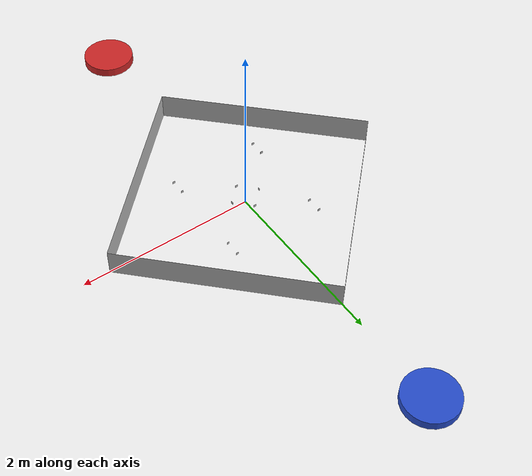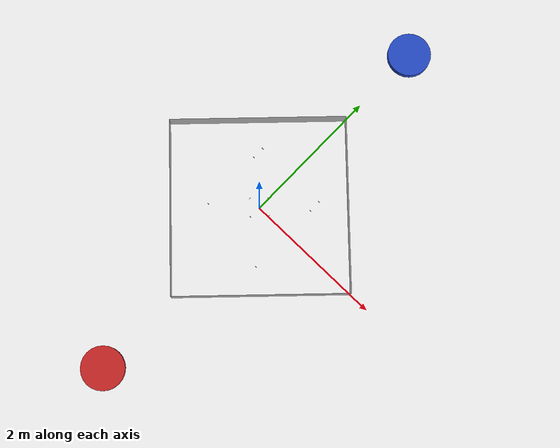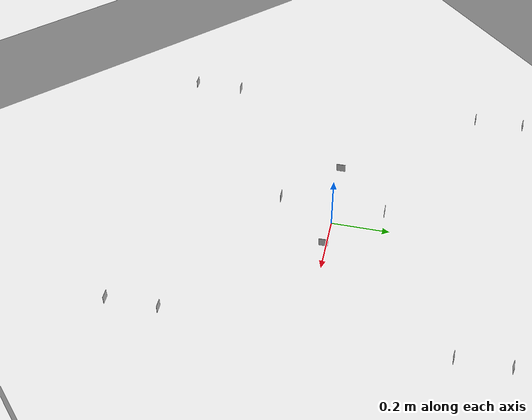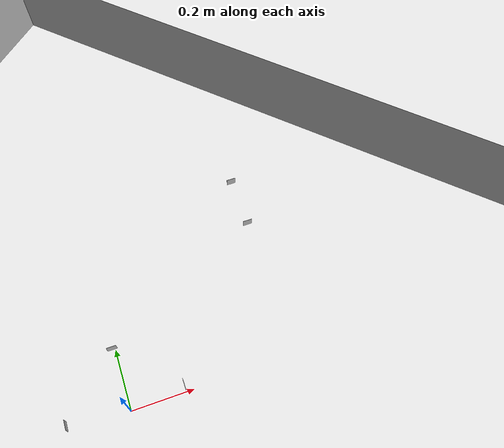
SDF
<sdf version="1.4">
 <world name="onigiri_field">
  <scene><shadows>false</shadows></scene>
  <physics name="ode_100iters" type="ode">
   <real_time_update_rate>1000</real_time_update_rate>
   <max_step_size>0.01</max_step_size>
   <real_time_factor>10</real_time_factor>
  </physics>
  <include><uri>model://sun</uri></include>
  <model name="box_0_tag_1">
   <static>true</static>
   <pose>0 0.176 0.1 0 0 0</pose>
   <link name="link">
    <visual name="visual">
     <geometry><box><size>0.03 0.001 0.03</size></box></geometry>
     <material><script><uri>model://tags</uri><name>0001</name></script></material>
    </visual>
   </link>
  </model>
  <model name="box_0_tag_2">
   <static>true</static>
   <pose>0 -0.176 0.1 0 0 0</pose>
   <link name="link">
    <visual name="visual">
     <geometry><box><size>0.03 0.001 0.03</size></box></geometry>
     <material><script><uri>model://tags</uri><name>0002</name></script></material>
    </visual>
   </link>
  </model>
  <model name="box_0_tag_3">
   <static>true</static>
   <pose>0.176 0 0.1 0 0 1.571</pose>
   <link name="link">
    <visual name="visual">
     <geometry><box><size>0.03 0.001 0.03</size></box></geometry>
     <material><script><uri>model://tags</uri><name>0003</name></script></material>
    </visual>
   </link>
  </model>
  <model name="box_0_tag_4">
   <static>true</static>
   <pose>-0.176 0 0.1 0 0 1.571</pose>
   <link name="link">
    <visual name="visual">
     <geometry><box><size>0.03 0.001 0.03</size></box></geometry>
     <material><script><uri>model://tags</uri><name>0004</name></script></material>
    </visual>
   </link>
  </model>
  <model name="box_1_tag_5">
   <static>true</static>
   <pose>0.53 0.615 0.1 0 0 0</pose>
   <link name="link">
    <visual name="visual">
     <geometry><box><size>0.03 0.001 0.03</size></box></geometry>
     <material><script><uri>model://tags</uri><name>0005</name></script></material>
    </visual>
   </link>
  </model>
  <model name="box_1_tag_6">
   <static>true</static>
   <pose>0.53 0.445 0.1 0 0 0</pose>
   <link name="link">
    <visual name="visual">
     <geometry><box><size>0.03 0.001 0.03</size></box></geometry>
     <material><script><uri>model://tags</uri><name>0006</name></script></material>
    </visual>
   </link>
  </model>
  <model name="box_2_tag_7">
   <static>true</static>
   <pose>0.53 -0.445 0.1 0 0 0</pose>
   <link name="link">
    <visual name="visual">
     <geometry><box><size>0.03 0.001 0.03</size></box></geometry>
     <material><script><uri>model://tags</uri><name>0007</name></script></material>
    </visual>
   </link>
  </model>
  <model name="box_2_tag_8">
   <static>true</static>
   <pose>0.53 -0.615 0.1 0 0 0</pose>
   <link name="link">
    <visual name="visual">
     <geometry><box><size>0.03 0.001 0.03</size></box></geometry>
     <material><script><uri>model://tags</uri><name>0008</name></script></material>
    </visual>
   </link>
  </model>
  <model name="box_3_tag_9">
   <static>true</static>
   <pose>-0.53 0.615 0.1 0 0 0</pose>
   <link name="link">
    <visual name="visual">
     <geometry><box><size>0.03 0.001 0.03</size></box></geometry>
     <material><script><uri>model://tags</uri><name>0009</name></script></material>
    </visual>
   </link>
  </model>
  <model name="box_3_tag_10">
   <static>true</static>
   <pose>-0.53 0.445 0.1 0 0 0</pose>
   <link name="link">
    <visual name="visual">
     <geometry><box><size>0.03 0.001 0.03</size></box></geometry>
     <material><script><uri>model://tags</uri><name>0010</name></script></material>
    </visual>
   </link>
  </model>
  <model name="box_4_tag_11">
   <static>true</static>
   <pose>-0.53 -0.445 0.1 0 0 0</pose>
   <link name="link">
    <visual name="visual">
     <geometry><box><size>0.03 0.001 0.03</size></box></geometry>
     <material><script><uri>model://tags</uri><name>0011</name></script></material>
    </visual>
   </link>
  </model>
  <model name="box_4_tag_12">
   <static>true</static>
   <pose>-0.53 -0.615 0.1 0 0 0</pose>
   <link name="link">
    <visual name="visual">
     <geometry><box><size>0.03 0.001 0.03</size></box></geometry>
     <material><script><uri>model://tags</uri><name>0012</name></script></material>
    </visual>
   </link>
  </model>
  <model name="wall_1">
   <static>true</static>
   <pose>0.8485 0.8485 0.15 0 0 -0.785398163397</pose>
   <link name="link">
    <collision name="visual"><geometry><box><size>2.39992041535 0.0001 0.3</size></box></geometry></collision>
    <visual name="visual">
     <geometry><box><size>2.39992041535 0.0001 0.3</size></box></geometry>
     <material><script><uri>model://wall</uri><name>wall_1</name></script></material>
    </visual>
   </link>
  </model>
  <model name="wall_2">
   <static>true</static>
   <pose>0.8485 -0.8485 0.15 0 0 -2.35619449019</pose>
   <link name="link">
    <collision name="visual"><geometry><box><size>2.39992041535 0.0001 0.3</size></box></geometry></collision>
    <visual name="visual">
     <geometry><box><size>2.39992041535 0.0001 0.3</size></box></geometry>
     <material><script><uri>model://wall</uri><name>wall_2</name></script></material>
    </visual>
   </link>
  </model>
  <model name="wall_3">
   <static>true</static>
   <pose>-0.8485 -0.8485 0.15 0 0 2.35619449019</pose>
   <link name="link">
    <collision name="visual"><geometry><box><size>2.39992041535 0.0001 0.3</size></box></geometry></collision>
    <visual name="visual">
     <geometry><box><size>2.39992041535 0.0001 0.3</size></box></geometry>
     <material><script><uri>model://wall</uri><name>wall_3</name></script></material>
    </visual>
   </link>
  </model>
  <model name="wall_4">
   <static>true</static>
   <pose>-0.8485 0.8485 0.15 0 0 0.785398163397</pose>
   <link name="link">
    <collision name="visual"><geometry><box><size>2.39992041535 0.0001 0.3</size></box></geometry></collision>
    <visual name="visual">
     <geometry><box><size>2.39992041535 0.0001 0.3</size></box></geometry>
     <material><script><uri>model://wall</uri><name>wall_4</name></script></material>
    </visual>
   </link>
  </model>
  <model name="blue_maker">
   <static>true</static>
   <link name="link">
    <visual name="visual">
     <pose>0 3 0 0 0 0</pose>
     <geometry><cylinder><radius>0.3</radius><length>0.1</length></cylinder></geometry>
     <material><script><name>Gazebo/Blue</name></script></material>
    </visual>
   </link>
  </model>
  <model name="red_maker">
   <static>true</static>
   <link name="link">
    <visual name="visual">
     <pose>0 -3 0 0 0 0</pose>
     <geometry><cylinder><radius>0.3</radius><length>0.1</length></cylinder></geometry>
     <material><script><name>Gazebo/Red</name></script></material>
    </visual>
   </link>
  </model>
 </world>
</sdf>
